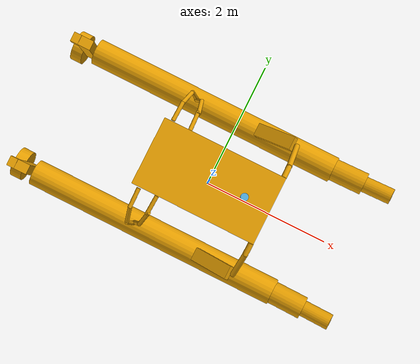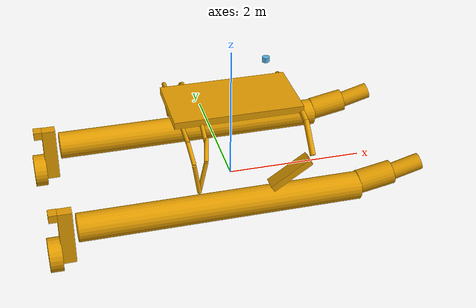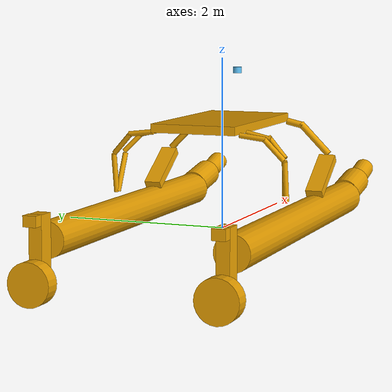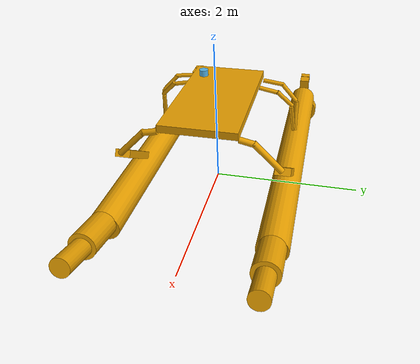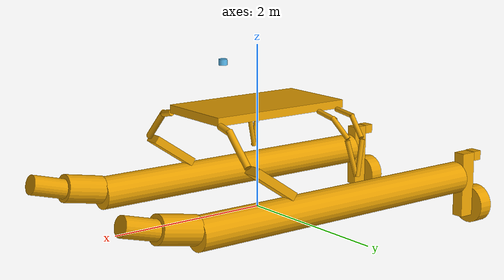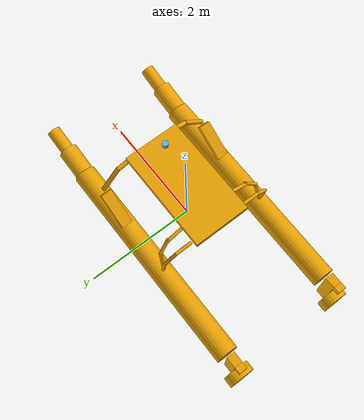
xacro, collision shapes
<?xml version="1.0"?>
<robot xmlns:xacro="http://ros.org/wiki/xacro"
       name="WAM-V">
  <!-- Defines the base vehicle -->
  <xacro:include filename="$(find wamv_description)/urdf/wamv_base.xacro" />
  <xacro:include filename="$(find wamv_description)/urdf/wamv_sensors.urdf.xacro" />

  <!-- Attach hydrodynamics plugin -->
  <xacro:include filename="$(find robotx_gazebo)/urdf/wamv_gazebo_dynamics_plugin.xacro" />
  <xacro:usv_dynamics_gazebo name="wamv_dynamics_plugin"/>

  <!-- Attach wind plugin -->
  <xacro:include filename="$(find robotx_gazebo)/urdf/wamv_gazebo_wind_plugin.xacro" />
  <xacro:usv_wind_gazebo name="wamv_wind_plugin"/>

  <!-- Attach thrust plugin -->
  <xacro:include filename="$(find robotx_gazebo)/urdf/wamv_gazebo_thrust_plugin.xacro" />
  <xacro:usv_thrust_gazebo name="wamv_thrust_plugin"/>

</robot>

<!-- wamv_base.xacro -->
<robot xmlns:xacro="http://ros.org/wiki/xacro" name="wam-v">
  <xacro:include filename="properties.urdf.xacro"/>

  <link name="base_link">
    <wind>true</wind>
    <visual>
      <geometry>
        <mesh filename="package://wamv_description/mesh/WAM-V-Base.dae"/>
      </geometry>
    </visual>

    <!-- Left float -->
    <collision name="left_float">
      <origin xyz="-0.4 1.03 0.2" rpy="0 1.57 0" />
      <geometry>
        <cylinder length="4" radius="0.2" />
      </geometry>
    </collision>
    <collision name="left_mid_float">
      <origin xyz="1.85 1.03 0.3" rpy="0 1.38 0" />
      <geometry>
        <cylinder length="0.5" radius="0.17" />
      </geometry>
    </collision>
    <collision name="left_front_float">
      <origin xyz="2.3 1.03 0.4" rpy="0 1.3 0" />
      <geometry>
        <cylinder length="0.45" radius="0.12" />
      </geometry>
    </collision>

    <!-- Left engine upper -->
    <collision name="left_engine_vertical_axis">
      <origin xyz="-2.55 1.03 0.09" rpy="0 0 0" />
      <geometry>
        <box size="0.2 0.15 0.83" />
      </geometry>
    </collision>
    <collision name="left_engine_rear_end">
      <origin xyz="-2.71 1.03 0.45" rpy="0 0 0" />
      <geometry>
        <box size="0.12 0.15 0.12" />
      </geometry>
    </collision>
    <collision name="left_propeller">
      <origin xyz="-2.73 1.03 -0.2" rpy="0 1.57 0" />
      <geometry>
        <cylinder length="0.18" radius="0.24" />
      </geometry>
    </collision>

    <!-- Right float -->
    <collision name="left_float">
      <origin xyz="-0.4 -1.03 0.2" rpy="0 1.57 0" />
      <geometry>
        <cylinder length="4" radius="0.2" />
      </geometry>
    </collision>
    <collision name="left_mid_float">
      <origin xyz="1.85 -1.03 0.3" rpy="0 1.38 0" />
      <geometry>
        <cylinder length="0.5" radius="0.17" />
      </geometry>
    </collision>
    <collision name="left_front_float">
      <origin xyz="2.3 -1.03 0.4" rpy="0 1.3 0" />
      <geometry>
        <cylinder length="0.45" radius="0.12" />
      </geometry>
    </collision>

    <!-- Right engine upper -->
    <collision name="left_engine_vertical_axis">
      <origin xyz="-2.55 -1.03 0.09" rpy="0 0 0" />
      <geometry>
        <box size="0.2 0.15 0.83" />
      </geometry>
    </collision>
    <collision name="left_engine_rear_end">
      <origin xyz="-2.71 -1.03 0.45" rpy="0 0 0" />
      <geometry>
        <box size="0.12 0.15 0.12" />
      </geometry>
    </collision>
    <collision name="left_propeller">
      <origin xyz="-2.73 -1.03 -0.2" rpy="0 1.57 0" />
      <geometry>
        <cylinder length="0.18" radius="0.24" />
      </geometry>
    </collision>

    <!-- Base -->
    <collision name="top_base">
      <origin xyz="0 -0 1.25" rpy="0 0 0" />
      <geometry>
        <box size="1.85 1 0.1" />
      </geometry>
    </collision>

    <!-- Front left beam -->
    <collision name="front_left_beam_lower">
      <origin xyz="0.9 0.85 1" rpy="0.78 0 0" />
      <geometry>
        <cylinder length="0.5" radius="0.04" />
      </geometry>
    </collision>

    <collision name="front_left_beam_upper">
      <origin xyz="0.9 0.6 1.18" rpy="1.35 0 0" />
      <geometry>
        <cylinder length="0.2" radius="0.04" />
      </geometry>
    </collision>

    <!-- Front right beam -->
    <collision name="front_right_beam_lower">
      <origin xyz="0.9 -0.85 1" rpy="-0.78 0 0" />
      <geometry>
        <cylinder length="0.5" radius="0.04" />
      </geometry>
    </collision>

    <collision name="front_right_beam_upper">
      <origin xyz="0.9 -0.6 1.18" rpy="-1.35 0 0" />
      <geometry>
        <cylinder length="0.2" radius="0.04" />
      </geometry>
    </collision>

    <!-- Mid left beam -->
    <collision name="mid_left_beam_lower">
      <origin xyz="-0.65 0.99 0.7" rpy="0.1 0.25 0" />
      <geometry>
        <cylinder length="0.45" radius="0.03" />
      </geometry>
    </collision>

    <collision name="mid_left_beam_medium">
      <origin xyz="-0.57 0.87 1.05" rpy="0.75 0.25 0" />
      <geometry>
        <cylinder length="0.32" radius="0.03" />
      </geometry>
    </collision>

    <collision name="mid_left_beam_upper">
      <origin xyz="-0.55 0.65 1.17" rpy="1.35 0.25 0" />
      <geometry>
        <cylinder length="0.3" radius="0.03" />
      </geometry>
    </collision>

    <!-- Mid right beam -->
    <collision name="mid_right_beam_lower">
      <origin xyz="-0.65 -0.99 0.7" rpy="-0.1 0.25 0" />
      <geometry>
        <cylinder length="0.45" radius="0.03" />
      </geometry>
    </collision>

    <collision name="mid_right_beam_medium">
      <origin xyz="-0.57 -0.87 1.05" rpy="-0.75 0.25 0" />
      <geometry>
        <cylinder length="0.32" radius="0.03" />
      </geometry>
    </collision>

    <collision name="mid_right_beam_upper">
      <origin xyz="-0.55 -0.65 1.17" rpy="-1.35 0.25 0" />
      <geometry>
        <cylinder length="0.3" radius="0.03" />
      </geometry>
    </collision>

    <!-- Rear left beam -->
    <collision name="rear_left_beam_lower">
      <origin xyz="-0.74 1.03 0.7" rpy="0 -0.15 0" />
      <geometry>
        <cylinder length="0.45" radius="0.03" />
      </geometry>
    </collision>

    <collision name="rear_left_beam_medium">
      <origin xyz="-0.79 0.91 1.05" rpy="0.75 -0.15 0" />
      <geometry>
        <cylinder length="0.32" radius="0.03" />
      </geometry>
    </collision>

    <collision name="rear_left_beam_upper">
      <origin xyz="-0.81 0.67 1.18" rpy="1.45 -0.15 0" />
      <geometry>
        <cylinder length="0.3" radius="0.03" />
      </geometry>
    </collision>

    <!-- Rear right beam -->
    <collision name="rear_right_beam_lower">
      <origin xyz="-0.74 -1.03 0.7" rpy="0 -0.15 0" />
      <geometry>
        <cylinder length="0.45" radius="0.03" />
      </geometry>
    </collision>

    <collision name="rear_right_beam_medium">
      <origin xyz="-0.79 -0.91 1.05" rpy="-0.75 -0.15 0" />
      <geometry>
        <cylinder length="0.32" radius="0.03" />
      </geometry>
    </collision>

    <collision name="rear_right_beam_upper">
      <origin xyz="-0.81 -0.67 1.18" rpy="-1.45 -0.15 0" />
      <geometry>
        <cylinder length="0.3" radius="0.03" />
      </geometry>
    </collision>

    <!-- Left joint -->
    <collision name="left_joint">
      <origin xyz="0.58 1.03 0.6" rpy="0 -0.6 0" />
      <geometry>
        <box size="0.65 0.2 0.1" />
      </geometry>
    </collision>

    <!-- Right joint -->
    <collision name="right_joint">
      <origin xyz="0.58 -1.03 0.6" rpy="0 -0.6 0" />
      <geometry>
        <box size="0.65 0.2 0.1" />
      </geometry>
    </collision>

    <inertial>
      <mass value="180.0"/> <!-- From von Ellenrieder, consistent with WAM-V specs-->
      <inertia ixx="120.0" ixy="0.0" ixz="0.0" iyy="393" iyz="0.0" izz="446.0"/>
    </inertial>
  </link>

  <joint name="base_link_joint" type="fixed">
    <origin xyz="0 0 0"/>
    <parent link="base_footprint"/>
    <child link="base_link"/>
  </joint>

  <link name="base_footprint"/>

  <link name="front_camera_link"/>
  <joint name="front_camera_joint" type="fixed">
    <origin xyz="0.5 0 1.5"/>
    <parent link="base_link"/>
    <child link="front_camera_link"/>
  </joint>
  <link name="left_camera_link"/>
  <joint name="left_camera_joint" type="fixed">
    <origin xyz="0 0.5 0" rpy="0 0 ${pi/2}"/>
    <parent link="base_link"/>
    <child link="left_camera_link"/>
  </joint>
  <link name="right_camera_link"/>
  <joint name="right_camera_joint" type="fixed">
    <origin xyz="0 -0.5 0" rpy="0 0 ${-pi/2}"/>
    <parent link="base_link"/>
    <child link="right_camera_link"/>
  </joint>
  <link name="rear_camera_link"/>
  <joint name="rear_camera_joint" type="fixed">
    <origin xyz="-0.5 0 0" rpy="0 0 ${pi}"/>
    <parent link="base_link"/>
    <child link="rear_camera_link"/>
  </joint>

  <link name="scan"/>
  <joint name="scan_joint" type="fixed">
    <origin xyz="1.5 0 -1" rpy="0 0 0"/>
    <parent link="base_link"/>
    <child link="scan"/>
  </joint>

  <link name="gps"/>
  <joint name="gps_joint" type="fixed">
    <origin xyz="0 0 1.5"/>
    <parent link="base_link"/>
    <child link="gps"/>
  </joint>

  <link name="imu"/>
  <joint name="imu_joint" type="fixed">
    <origin xyz="-0.3 0 1.5"/>
    <parent link="base_link"/>
    <child link="imu"/>
  </joint>

</robot>

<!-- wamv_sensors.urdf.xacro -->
<robot xmlns:xacro="http://ros.org/wiki/xacro" name="wam-v">
  <gazebo>
    <plugin name="gps_sim" filename="libhector_gazebo_ros_gps.so">
      <alwaysOn>1</alwaysOn>
      <updateRate>10.0</updateRate>
      <bodyName>gps</bodyName>
      <topicName>fix</topicName>
      <velocityTopicName>fix_velocity</velocityTopicName>
      <drift>5.0 5.0 5.0</drift>
      <gaussianNoise>0.1 0.1 0.1</gaussianNoise>
      <velocityDrift>0 0 0</velocityDrift>
      <velocityGaussianNoise>0.1 0.1 0.1</velocityGaussianNoise>
      <referenceLatitude>21.31</referenceLatitude>
      <referenceLongitude>-157.90</referenceLongitude>
    </plugin>
  </gazebo>
  <gazebo reference="imu">
    <gravity>true</gravity>
    <sensor name="imu_sensor" type="imu">
      <always_on>true</always_on>
      <update_rate>100</update_rate>
      <visualize>true</visualize>
      <topic>__default_topic__</topic>
      <plugin filename="libgazebo_ros_imu_sensor.so" name="imu_plugin">
        <topicName>imu</topicName>
        <bodyName>imu</bodyName>
        <updateRateHZ>10.0</updateRateHZ>
        <gaussianNoise>0.0</gaussianNoise>
        <xyzOffset>0 0 0</xyzOffset>
        <rpyOffset>0 0 0</rpyOffset>
        <frameName>imu</frameName>
      </plugin>
      <pose>0 0 0 0 0 0</pose>
    </sensor>
  </gazebo>
  <gazebo>
    <plugin name="usv_twist_sensor_plugin" filename="libusv_twist_sensor_plugin.so">
      <targetLink>base_footprint</targetLink>
      <publishRate>50</publishRate>
      <sensorNoiseVariance>0.1</sensorNoiseVariance>
    </plugin>
  </gazebo>
  <gazebo reference="front_camera_link">
    <sensor type="camera" name="front_camera">
      <update_rate>30.0</update_rate>
      <camera name="head">
        <horizontal_fov>1.3962634</horizontal_fov>
        <image>
          <width>640</width>
          <height>480</height>
          <format>R8G8B8</format>
        </image>
        <clip>
          <near>0.02</near>
          <far>300</far>
        </clip>
        <noise>
          <type>gaussian</type>
          <!-- Noise is sampled independently per pixel on each frame.
               That pixel's noise value is added to each of its color
               channels, which at that point lie in the range [0,1]. -->
          <mean>0.0</mean>
          <stddev>0.007</stddev>
        </noise>
      </camera>
      <plugin name="camera_controller" filename="libgazebo_ros_camera.so">
        <alwaysOn>true</alwaysOn>
        <updateRate>0.0</updateRate>
        <cameraName>/wam_v/front_camera</cameraName>
        <imageTopicName>image_raw</imageTopicName>
        <cameraInfoTopicName>camera_info</cameraInfoTopicName>
        <frameName>front_camera_link</frameName>
        <hackBaseline>0.07</hackBaseline>
        <distortionK1>0.0</distortionK1>
        <distortionK2>0.0</distortionK2>
        <distortionK3>0.0</distortionK3>
        <distortionT1>0.0</distortionT1>
        <distortionT2>0.0</distortionT2>
      </plugin>
    </sensor>
  </gazebo>
  <xacro:include filename="$(find velodyne_description)/urdf/VLP-16.urdf.xacro"/>
  <VLP-16 parent="base_link" name="velodyne" topic="/velodyne_points" hz="10" samples="440">
      <origin xyz="0.5 0 1.8" rpy="0 0 0" />
  </VLP-16>
</robot>

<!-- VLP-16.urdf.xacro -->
<robot xmlns:xacro="http://www.ros.org/wiki/xacro" name="VLP-16">
  <xacro:property name="M_PI" value="3.1415926535897931" />
  <xacro:macro name="VLP-16" params="*origin is_sim:=true parent:=base_link name:=velodyne tf_prefix:='' topic:=/velodyne_points organize_cloud:=false hz:=10 lasers:=16 samples:=1875 collision_range:=0.3 min_range:=0.0 max_range:=100.0 noise:=0.008 min_angle:=-${M_PI} max_angle:=${M_PI} gpu:=false">

    <joint name="${name}_base_mount_joint" type="fixed">
      <xacro:insert_block name="origin" />
      <parent link="${parent}"/>
      <child link="${name}_base_link"/>
    </joint>

    <link name="${name}_base_link">
      <inertial>
        <mass value="0.83"/>
        <origin xyz="0 0 0.03585"/>
        <inertia ixx="${(0.83 * (3.0*0.0516*0.0516 + 0.0717*0.0717)) / 12.0}" ixy="0" ixz="0"
          iyy="${(0.83 * (3.0*0.0516*0.0516 + 0.0717*0.0717)) / 12.0}" iyz="0"
          izz="${0.5 * 0.83 * (0.0516*0.0516)}"/>
      </inertial>
      <visual>
        <geometry>
          <mesh filename="package://velodyne_description/meshes/VLP16_base_1.dae" />
        </geometry>
      </visual>
      <visual>
        <geometry>
          <mesh filename="package://velodyne_description/meshes/VLP16_base_2.dae" />
        </geometry>
      </visual>
      <collision>
        <origin rpy="0 0 0" xyz="0 0 0.03585"/>
        <geometry>
          <cylinder radius="0.0516" length="0.0717"/>
        </geometry>
      </collision>
    </link>

    <joint name="${name}_base_scan_joint" type="fixed" >
      <origin xyz="0 0 0.0377" rpy="0 0 0" />
      <parent link="${name}_base_link" />
      <child link="${name}"/>
    </joint>

    <link name="${name}">
      <inertial>
        <mass value="0.01"/>
        <origin xyz="0 0 0"/>
        <inertia ixx="1e-7" ixy="0" ixz="0" iyy="1e-7" iyz="0" izz="1e-7"/>
      </inertial>
      <visual>
        <origin xyz="0 0 -0.0377" />
        <geometry>
          <mesh filename="package://velodyne_description/meshes/VLP16_scan.dae" />
        </geometry>
      </visual>
      <collision>
        <geometry>
          <sphere radius="0"/>
        </geometry>
      </collision>
    </link>

    <!-- Gazebo requires the velodyne_gazebo_plugins package -->
    <xacro:if value="${is_sim}">
        <gazebo reference="${name}">
            <xacro:if value="${gpu}">
                <sensor type="gpu_ray" name="${name}-VLP16">
                <pose>0 0 0 0 0 0</pose>
                <visualize>false</visualize>
                <update_rate>${hz}</update_rate>
                <ray>
                    <scan>
                    <horizontal>
                        <samples>${samples}</samples>
                        <resolution>1</resolution>
                        <min_angle>${min_angle}</min_angle>
                        <max_angle>${max_angle}</max_angle>
                    </horizontal>
                    <vertical>
                        <samples>${lasers}</samples>
                        <resolution>1</resolution>
                        <min_angle>-${15.0*M_PI/180.0}</min_angle>
                        <max_angle> ${15.0*M_PI/180.0}</max_angle>
                    </vertical>
                    </scan>
                    <range>
                    <min>${collision_range}</min>
                    <max>${max_range+1}</max>
                    <resolution>0.001</resolution>
                    </range>
                    <noise>
                    <type>gaussian</type>
                    <mean>0.0</mean>
                    <stddev>0.0</stddev>
                    </noise>
                </ray>
                <plugin name="gazebo_ros_laser_controller" filename="libgazebo_ros_velodyne_laser.so">
                    <ros>
                    <namespace>/${name}</namespace>
                    <remapping>~/out:=${topic}</remapping>
                    </ros>
                    <tf_prefix>${tf_prefix}</tf_prefix>
                    <frame_name>${name}</frame_name>
                    <organize_cloud>${organize_cloud}</organize_cloud>
                    <min_range>${min_range}</min_range>
                    <max_range>${max_range}</max_range>
                    <gaussian_noise>${noise}</gaussian_noise>
                </plugin>
                </sensor>
            </xacro:if>
            <xacro:unless value="${gpu}">
                <sensor type="ray" name="${name}-VLP16">
                <pose>0 0 0 0 0 0</pose>
                <visualize>false</visualize>
                <update_rate>${hz}</update_rate>
                <ray>
                    <scan>
                    <horizontal>
                        <samples>${samples}</samples>
                        <resolution>1</resolution>
                        <min_angle>${min_angle}</min_angle>
                        <max_angle>${max_angle}</max_angle>
                    </horizontal>
                    <vertical>
                        <samples>${lasers}</samples>
                        <resolution>1</resolution>
                        <min_angle>-${15.0*M_PI/180.0}</min_angle>
                        <max_angle> ${15.0*M_PI/180.0}</max_angle>
                    </vertical>
                    </scan>
                    <range>
                    <min>${collision_range}</min>
                    <max>${max_range+1}</max>
                    <resolution>0.001</resolution>
                    </range>
                    <noise>
                    <type>gaussian</type>
                    <mean>0.0</mean>
                    <stddev>0.0</stddev>
                    </noise>
                </ray>
                <plugin name="gazebo_ros_laser_controller" filename="libgazebo_ros_velodyne_laser.so">
                    <ros>
                    <namespace>/${name}</namespace>
                    <remapping>~/out:=${topic}</remapping>
                    </ros>
                    <tf_prefix>${tf_prefix}</tf_prefix>
                    <frame_name>${name}</frame_name>
                    <organize_cloud>${organize_cloud}</organize_cloud>
                    <min_range>${min_range}</min_range>
                    <max_range>${max_range}</max_range>
                    <gaussian_noise>${noise}</gaussian_noise>
                </plugin>
                </sensor>
            </xacro:unless>
        </gazebo>
    </xacro:if>

  </xacro:macro>
</robot>
